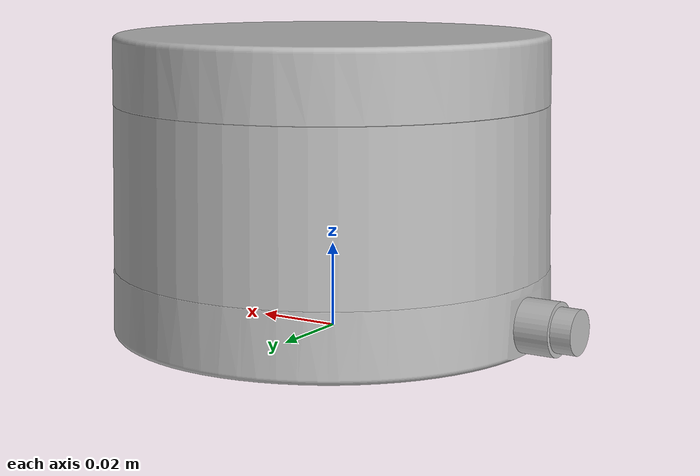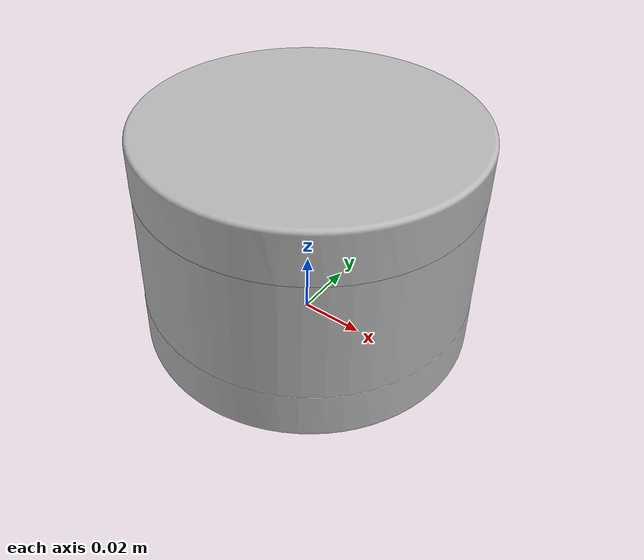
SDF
<?xml version="1.0"?>
<sdf version='1.6'>
  <model name='velodyne'>
    <link name='base_footprint'>
      <pose frame=''>0 0 0 0 -0 0</pose>
      <inertial>
        <pose frame=''>0 0 0.035872 0 -0 0</pose>
        <mass>0.84</mass>
        <inertia>
          <ixx>0.000908193</ixx>
          <ixy>0</ixy>
          <ixz>0</ixz>
          <iyy>0.000908193</iyy>
          <iyz>0</iyz>
          <izz>0.00110506</izz>
        </inertia>
      </inertial>
      <collision name='base_footprint_fixed_joint_lump__velodyne_base_link_collision'>
        <pose frame=''>0 0 0.03585 0 -0 0</pose>
        <geometry>
          <cylinder>
            <length>0.0717</length>
            <radius>0.0516</radius>
          </cylinder>
        </geometry>
      </collision>
      <visual name='base_footprint_fixed_joint_lump__velodyne_base_link_visual'>
        <pose frame=''>0 0 0 0 -0 0</pose>
        <geometry>
          <mesh>
            <scale>1 1 1</scale>
            <uri>model://velodyne/meshes/VLP16_base_1.dae</uri>
          </mesh>
        </geometry>
      </visual>
      <visual name='base_footprint_fixed_joint_lump__velodyne_base_link_visual_1'>
        <pose frame=''>0 0 0 0 -0 0</pose>
        <geometry>
          <mesh>
            <scale>1 1 1</scale>
            <uri>model://velodyne/meshes/VLP16_base_2.dae</uri>
          </mesh>
        </geometry>
      </visual>
      <visual name='base_footprint_fixed_joint_lump__velodyne_visual_2'>
        <pose frame=''>0 0 0 0 -0 0</pose>
        <geometry>
          <mesh>
            <scale>1 1 1</scale>
            <uri>model://velodyne/meshes/VLP16_scan.dae</uri>
          </mesh>
        </geometry>
        <material>
          <script>
            <uri>__default__</uri>
            <name>__default__</name>
          </script>
        </material>
      </visual>
      <gravity>1</gravity>
      <velocity_decay/>
      <self_collide>0</self_collide>
      <sensor name='velodyne-VLP16' type='ray'>
        <visualize>0</visualize>
        <update_rate>10</update_rate>
        <ray>
          <scan>
            <horizontal>
              <samples>440</samples>
              <resolution>1</resolution>
              <min_angle>-3.14159</min_angle>
              <max_angle>3.14159</max_angle>
            </horizontal>
            <vertical>
              <samples>16</samples>
              <resolution>1</resolution>
              <min_angle>-0.261799</min_angle>
              <max_angle>0.261799</max_angle>
            </vertical>
          </scan>
          <range>
            <min>0.3</min>
            <max>131</max>
            <resolution>0.001</resolution>
          </range>
          <noise>
            <type>gaussian</type>
            <mean>0</mean>
            <stddev>0</stddev>
          </noise>
        </ray>
        <plugin name='gazebo_ros_laser_controller' filename='libgazebo_velodyne_laser_plugin.so'>
          <topicName>point_cloud</topicName>
          <robotNamespace>velodyne</robotNamespace>
          <frameName>point_cloud</frameName>
          <min_range>0.9</min_range>
          <max_range>130.0</max_range>
          <gaussianNoise>0.008</gaussianNoise>
        </plugin>
        <pose frame=''>0 0 0.0377 0 -0 0</pose>
      </sensor>
    </link>
  </model>
</sdf>
